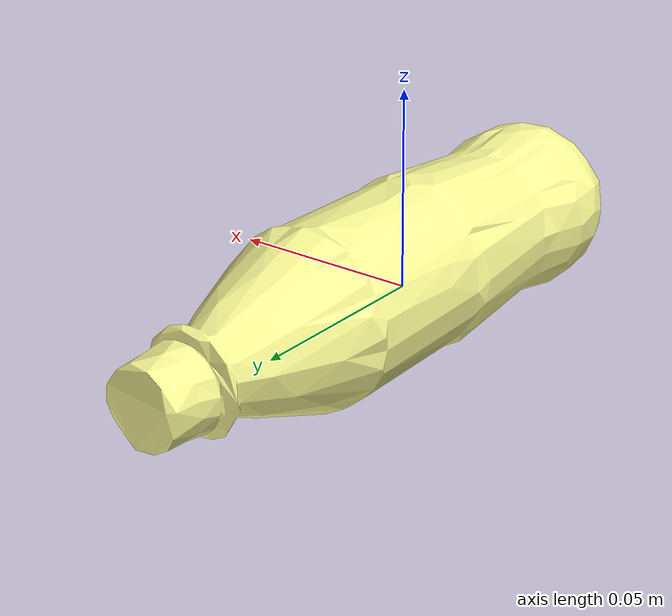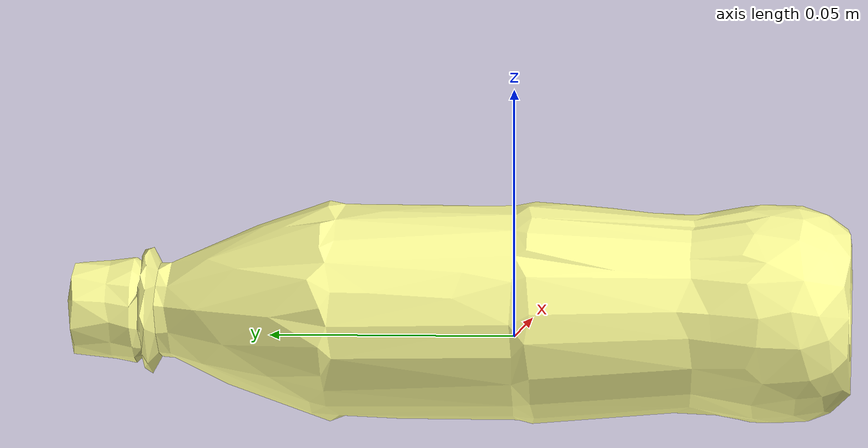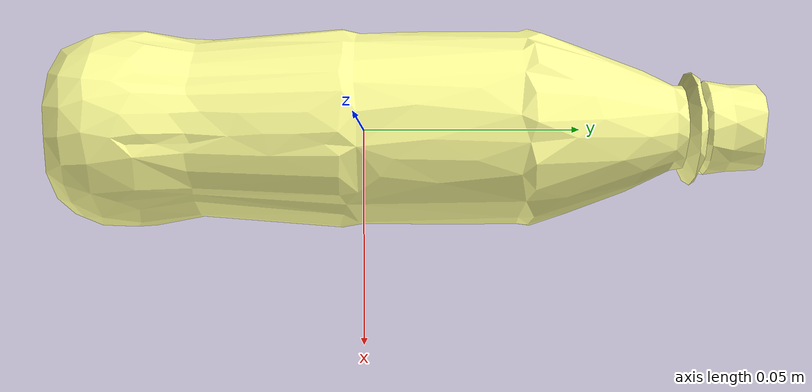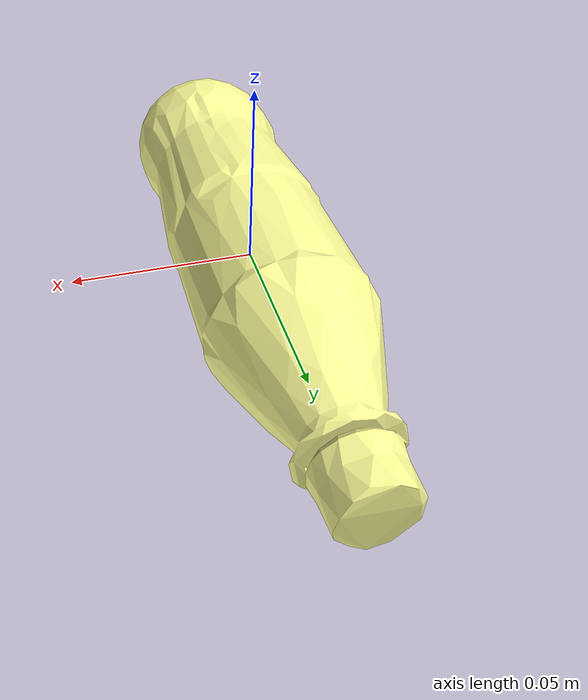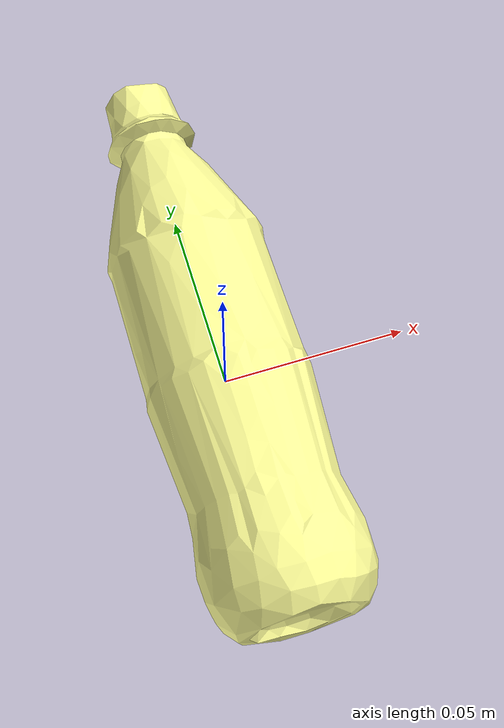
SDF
<sdf version="1.6">
  <model name="bottle4_3">
    <link name="link">
      <pose frame="">-0 0 0.005 0 -0 0</pose>
      <inertial>
        <mass>0.5</mass>
        <inertia>
          <ixx>0.0011291287126666664</ixx>
          <ixy>0</ixy>
          <ixz>0</ixz>
          <iyy>0.0011290874677083332</iyy>
          <iyz>0</iyz>
          <izz>0.00016870875504166667</izz>
        </inertia>
        <pose frame="">-3.350000000000022e-05 0.01100999999999999 -2.9999999999993606e-06 1.57 0 3.14</pose>
      </inertial>
      <self_collide>0</self_collide>
      <kinematic>0</kinematic>
      <gravity>1</gravity>
      <visual name="visual">
        <geometry>
          <mesh>
            <uri>/home/zisu/simulator/siemens_challenge/sim_world/toolbox/bottle4_3.dae</uri>
          </mesh>
        </geometry>
        <pose frame="">0 0 0 0 -0 0</pose>
        <transparency>0</transparency>
        <cast_shadows>0</cast_shadows>
      </visual>
      <collision name="collision">
        <laser_retro>0</laser_retro>
        <max_contacts>10</max_contacts>
        <pose frame="">-3.350000000000022e-05 0.01100999999999999 -2.9999999999993606e-06 1.57 0 3.14</pose>
        <geometry>
          <box>
            <size>0.044989 0.045 0.158348</size>
          </box>
        </geometry>
        <surface>
          <friction>
            <ode>
              <mu>1</mu>
              <mu2>1</mu2>
              <fdir1>0 0 0</fdir1>
              <slip1>0</slip1>
              <slip2>0</slip2>
            </ode>
            <torsional>
              <coefficient>1</coefficient>
              <patch_radius>0</patch_radius>
              <surface_radius>0.05</surface_radius>
              <use_patch_radius>0</use_patch_radius>
              <ode>
                <slip>0</slip>
              </ode>
            </torsional>
          </friction>
          <bounce>
            <restitution_coefficient>0</restitution_coefficient>
            <threshold>1e+06</threshold>
          </bounce>
          <contact>
            <collide_without_contact>0</collide_without_contact>
            <collide_without_contact_bitmask>1</collide_without_contact_bitmask>
            <collide_bitmask>1</collide_bitmask>
            <ode>
              <soft_cfm>0</soft_cfm>
              <soft_erp>0.2</soft_erp>
              <kp>100000</kp>
              <kd>1</kd>
              <max_vel>1</max_vel>
              <min_depth>0.001</min_depth>
            </ode>
            <bullet>
              <split_impulse>1</split_impulse>
              <split_impulse_penetration_threshold>-0.01</split_impulse_penetration_threshold>
              <soft_cfm>0</soft_cfm>
              <soft_erp>0.2</soft_erp>
              <kp>100000</kp>
              <kd>1</kd>
            </bullet>
          </contact>
        </surface>
      </collision>
    </link>
    <static>0</static>
    <allow_auto_disable>1</allow_auto_disable>
  </model>
</sdf>
